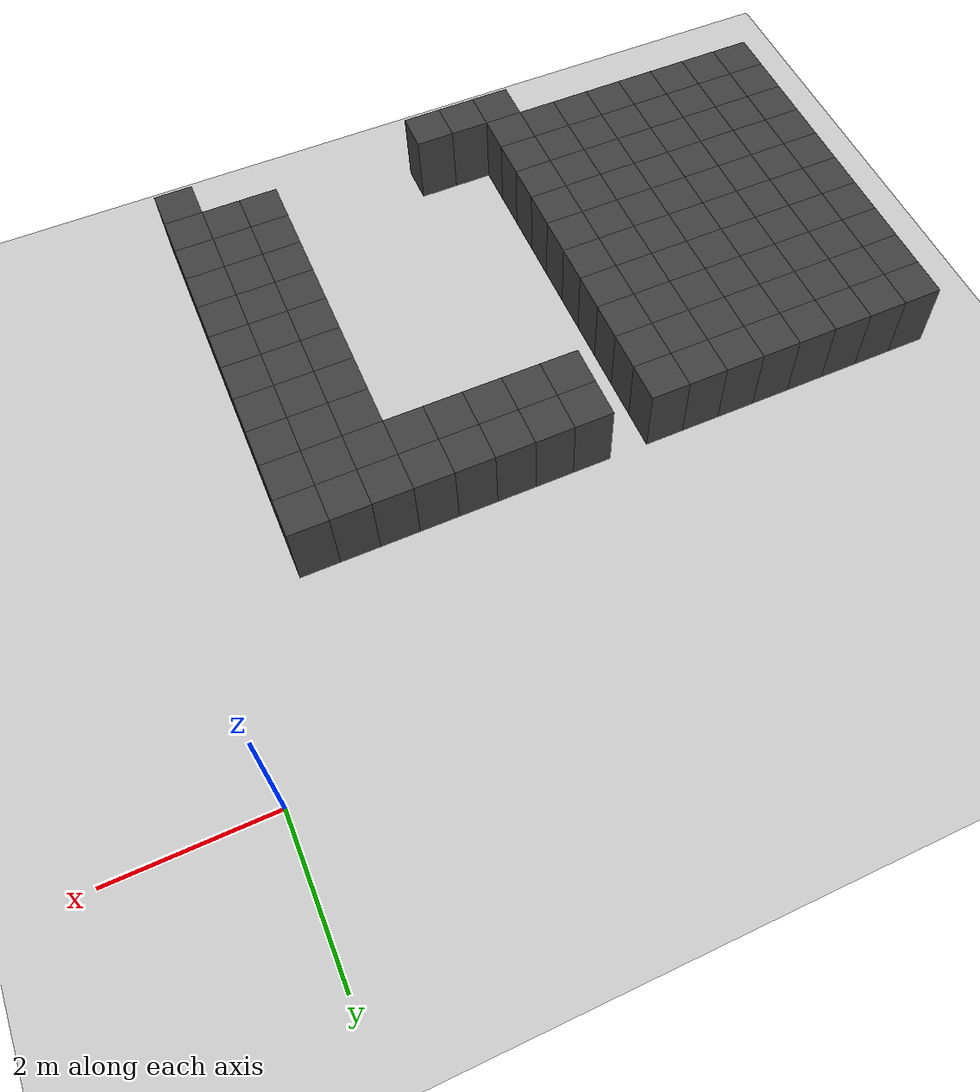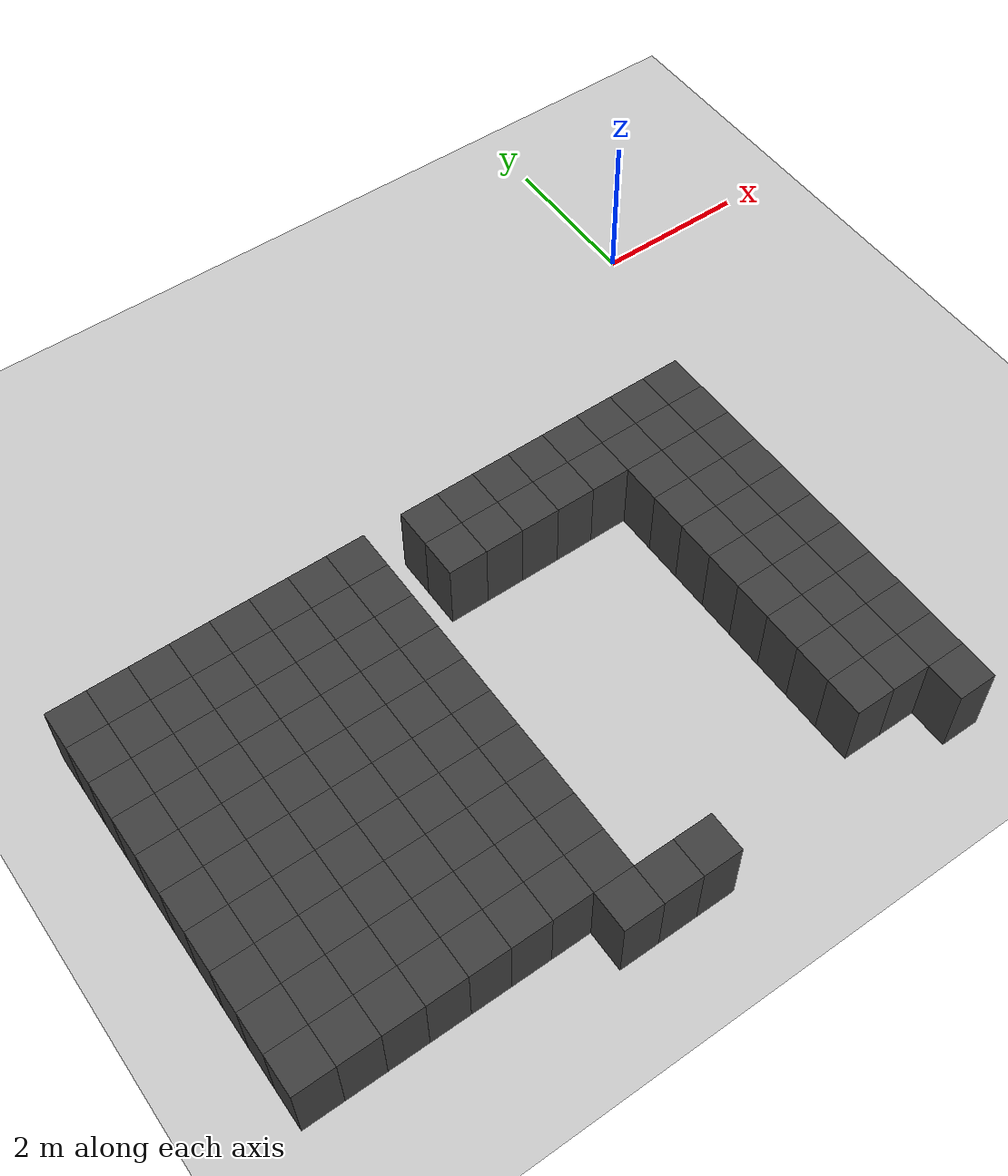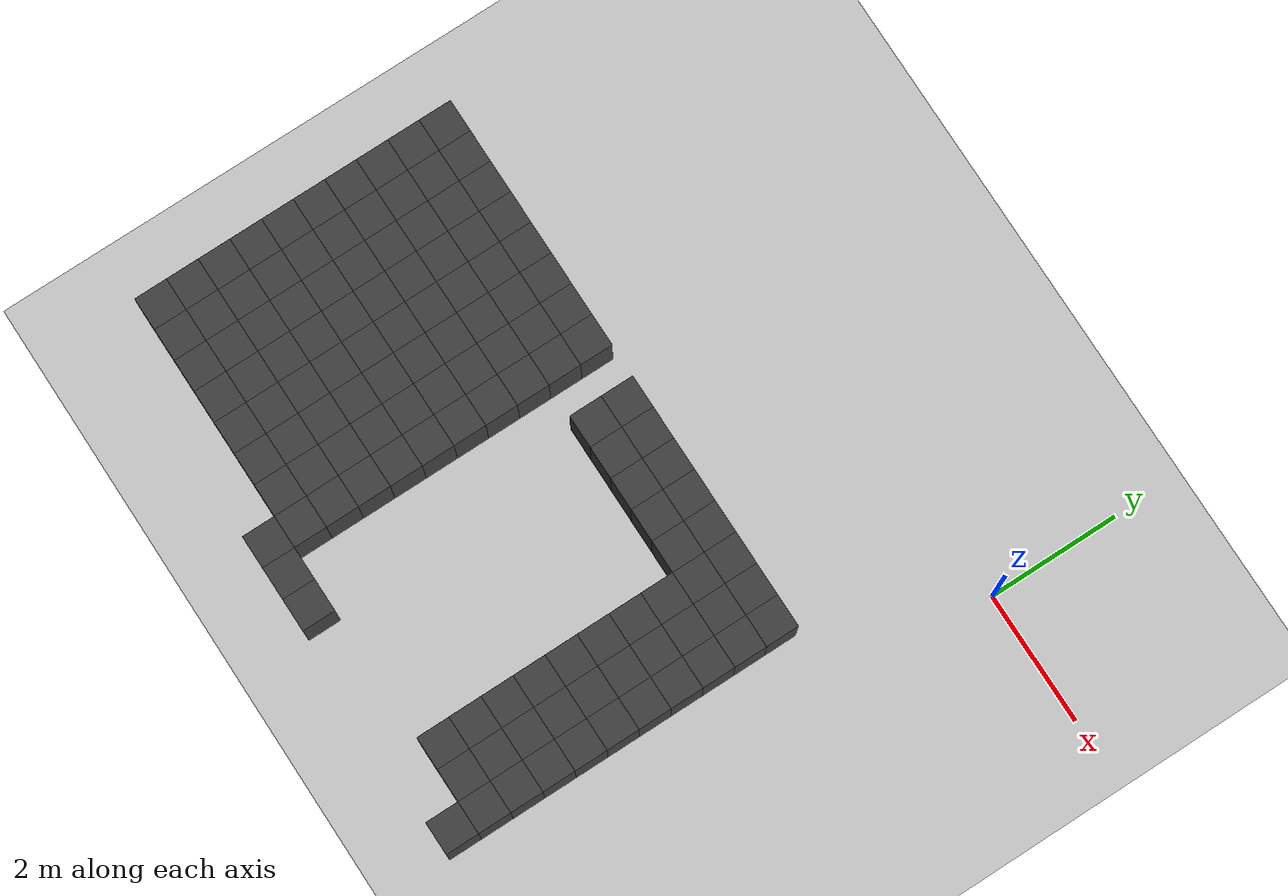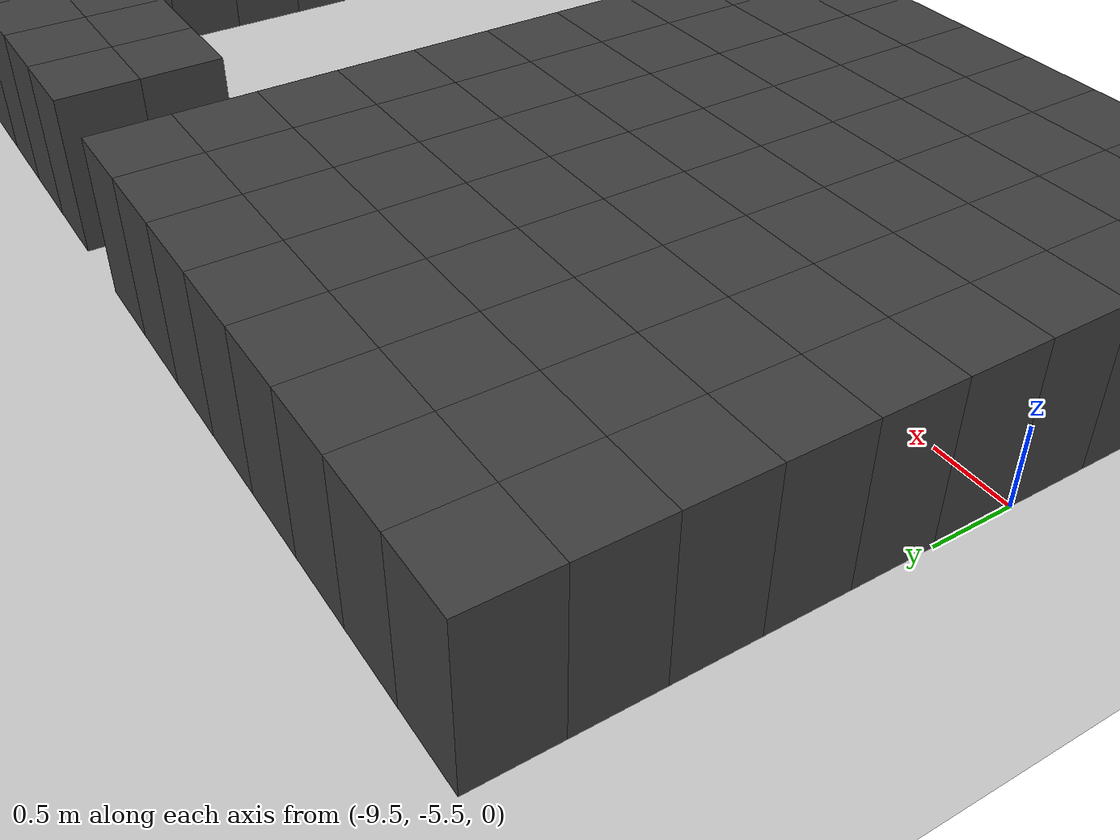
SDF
<sdf version="1.7">
 <world name="map_13364">
  <model name="ground_plane">
   <static>true</static>
   <link name="link">
    <collision name="collision">
     <geometry><plane><normal>0 0 1</normal><size>200 200</size></plane></geometry>
    </collision>
    <visual name="visual">
     <geometry><plane><normal>0 0 1</normal><size>200 200</size></plane></geometry>
     <material><ambient>0.8 0.8 0.8 1</ambient><diffuse>0.8 0.8 0.8 1</diffuse></material>
    </visual>
   </link>
  </model>
  <model name="maze_environment">
   <static>true</static>
   <link name="wall_1050">
    <pose>-9.250 -2.750 0.500 0 0 0</pose>
    <collision name="col"><geometry><box><size>0.5 0.5 1.0</size></box></geometry></collision>
    <visual name="vis">
     <geometry><box><size>0.5 0.5 1.0</size></box></geometry>
     <material><ambient>0.15 0.15 0.15 1</ambient><diffuse>0.25 0.25 0.25 1</diffuse></material>
    </visual>
   </link>
   <link name="wall_1051">
    <pose>-8.750 -2.750 0.500 0 0 0</pose>
    <collision name="col"><geometry><box><size>0.5 0.5 1.0</size></box></geometry></collision>
    <visual name="vis">
     <geometry><box><size>0.5 0.5 1.0</size></box></geometry>
     <material><ambient>0.15 0.15 0.15 1</ambient><diffuse>0.25 0.25 0.25 1</diffuse></material>
    </visual>
   </link>
   <link name="wall_1052">
    <pose>-8.250 -2.750 0.500 0 0 0</pose>
    <collision name="col"><geometry><box><size>0.5 0.5 1.0</size></box></geometry></collision>
    <visual name="vis">
     <geometry><box><size>0.5 0.5 1.0</size></box></geometry>
     <material><ambient>0.15 0.15 0.15 1</ambient><diffuse>0.25 0.25 0.25 1</diffuse></material>
    </visual>
   </link>
   <link name="wall_1053">
    <pose>-7.750 -2.750 0.500 0 0 0</pose>
    <collision name="col"><geometry><box><size>0.5 0.5 1.0</size></box></geometry></collision>
    <visual name="vis">
     <geometry><box><size>0.5 0.5 1.0</size></box></geometry>
     <material><ambient>0.15 0.15 0.15 1</ambient><diffuse>0.25 0.25 0.25 1</diffuse></material>
    </visual>
   </link>
   <link name="wall_1054">
    <pose>-7.250 -2.750 0.500 0 0 0</pose>
    <collision name="col"><geometry><box><size>0.5 0.5 1.0</size></box></geometry></collision>
    <visual name="vis">
     <geometry><box><size>0.5 0.5 1.0</size></box></geometry>
     <material><ambient>0.15 0.15 0.15 1</ambient><diffuse>0.25 0.25 0.25 1</diffuse></material>
    </visual>
   </link>
   <link name="wall_1055">
    <pose>-6.750 -2.750 0.500 0 0 0</pose>
    <collision name="col"><geometry><box><size>0.5 0.5 1.0</size></box></geometry></collision>
    <visual name="vis">
     <geometry><box><size>0.5 0.5 1.0</size></box></geometry>
     <material><ambient>0.15 0.15 0.15 1</ambient><diffuse>0.25 0.25 0.25 1</diffuse></material>
    </visual>
   </link>
   <link name="wall_1056">
    <pose>-6.250 -2.750 0.500 0 0 0</pose>
    <collision name="col"><geometry><box><size>0.5 0.5 1.0</size></box></geometry></collision>
    <visual name="vis">
     <geometry><box><size>0.5 0.5 1.0</size></box></geometry>
     <material><ambient>0.15 0.15 0.15 1</ambient><diffuse>0.25 0.25 0.25 1</diffuse></material>
    </visual>
   </link>
   <link name="wall_1057">
    <pose>-5.750 -2.750 0.500 0 0 0</pose>
    <collision name="col"><geometry><box><size>0.5 0.5 1.0</size></box></geometry></collision>
    <visual name="vis">
     <geometry><box><size>0.5 0.5 1.0</size></box></geometry>
     <material><ambient>0.15 0.15 0.15 1</ambient><diffuse>0.25 0.25 0.25 1</diffuse></material>
    </visual>
   </link>
   <link name="wall_1058">
    <pose>-4.750 -2.750 0.500 0 0 0</pose>
    <collision name="col"><geometry><box><size>0.5 0.5 1.0</size></box></geometry></collision>
    <visual name="vis">
     <geometry><box><size>0.5 0.5 1.0</size></box></geometry>
     <material><ambient>0.15 0.15 0.15 1</ambient><diffuse>0.25 0.25 0.25 1</diffuse></material>
    </visual>
   </link>
   <link name="wall_1059">
    <pose>-4.250 -2.750 0.500 0 0 0</pose>
    <collision name="col"><geometry><box><size>0.5 0.5 1.0</size></box></geometry></collision>
    <visual name="vis">
     <geometry><box><size>0.5 0.5 1.0</size></box></geometry>
     <material><ambient>0.15 0.15 0.15 1</ambient><diffuse>0.25 0.25 0.25 1</diffuse></material>
    </visual>
   </link>
   <link name="wall_1060">
    <pose>-3.750 -2.750 0.500 0 0 0</pose>
    <collision name="col"><geometry><box><size>0.5 0.5 1.0</size></box></geometry></collision>
    <visual name="vis">
     <geometry><box><size>0.5 0.5 1.0</size></box></geometry>
     <material><ambient>0.15 0.15 0.15 1</ambient><diffuse>0.25 0.25 0.25 1</diffuse></material>
    </visual>
   </link>
   <link name="wall_1061">
    <pose>-3.250 -2.750 0.500 0 0 0</pose>
    <collision name="col"><geometry><box><size>0.5 0.5 1.0</size></box></geometry></collision>
    <visual name="vis">
     <geometry><box><size>0.5 0.5 1.0</size></box></geometry>
     <material><ambient>0.15 0.15 0.15 1</ambient><diffuse>0.25 0.25 0.25 1</diffuse></material>
    </visual>
   </link>
   <link name="wall_1062">
    <pose>-2.750 -2.750 0.500 0 0 0</pose>
    <collision name="col"><geometry><box><size>0.5 0.5 1.0</size></box></geometry></collision>
    <visual name="vis">
     <geometry><box><size>0.5 0.5 1.0</size></box></geometry>
     <material><ambient>0.15 0.15 0.15 1</ambient><diffuse>0.25 0.25 0.25 1</diffuse></material>
    </visual>
   </link>
   <link name="wall_1063">
    <pose>-2.250 -2.750 0.500 0 0 0</pose>
    <collision name="col"><geometry><box><size>0.5 0.5 1.0</size></box></geometry></collision>
    <visual name="vis">
     <geometry><box><size>0.5 0.5 1.0</size></box></geometry>
     <material><ambient>0.15 0.15 0.15 1</ambient><diffuse>0.25 0.25 0.25 1</diffuse></material>
    </visual>
   </link>
   <link name="wall_1064">
    <pose>-1.750 -2.750 0.500 0 0 0</pose>
    <collision name="col"><geometry><box><size>0.5 0.5 1.0</size></box></geometry></collision>
    <visual name="vis">
     <geometry><box><size>0.5 0.5 1.0</size></box></geometry>
     <material><ambient>0.15 0.15 0.15 1</ambient><diffuse>0.25 0.25 0.25 1</diffuse></material>
    </visual>
   </link>
   <link name="wall_1065">
    <pose>-1.250 -2.750 0.500 0 0 0</pose>
    <collision name="col"><geometry><box><size>0.5 0.5 1.0</size></box></geometry></collision>
    <visual name="vis">
     <geometry><box><size>0.5 0.5 1.0</size></box></geometry>
     <material><ambient>0.15 0.15 0.15 1</ambient><diffuse>0.25 0.25 0.25 1</diffuse></material>
    </visual>
   </link>
   <link name="wall_1090">
    <pose>-9.250 -3.250 0.500 0 0 0</pose>
    <collision name="col"><geometry><box><size>0.5 0.5 1.0</size></box></geometry></collision>
    <visual name="vis">
     <geometry><box><size>0.5 0.5 1.0</size></box></geometry>
     <material><ambient>0.15 0.15 0.15 1</ambient><diffuse>0.25 0.25 0.25 1</diffuse></material>
    </visual>
   </link>
   <link name="wall_1091">
    <pose>-8.750 -3.250 0.500 0 0 0</pose>
    <collision name="col"><geometry><box><size>0.5 0.5 1.0</size></box></geometry></collision>
    <visual name="vis">
     <geometry><box><size>0.5 0.5 1.0</size></box></geometry>
     <material><ambient>0.15 0.15 0.15 1</ambient><diffuse>0.25 0.25 0.25 1</diffuse></material>
    </visual>
   </link>
   <link name="wall_1092">
    <pose>-8.250 -3.250 0.500 0 0 0</pose>
    <collision name="col"><geometry><box><size>0.5 0.5 1.0</size></box></geometry></collision>
    <visual name="vis">
     <geometry><box><size>0.5 0.5 1.0</size></box></geometry>
     <material><ambient>0.15 0.15 0.15 1</ambient><diffuse>0.25 0.25 0.25 1</diffuse></material>
    </visual>
   </link>
   <link name="wall_1093">
    <pose>-7.750 -3.250 0.500 0 0 0</pose>
    <collision name="col"><geometry><box><size>0.5 0.5 1.0</size></box></geometry></collision>
    <visual name="vis">
     <geometry><box><size>0.5 0.5 1.0</size></box></geometry>
     <material><ambient>0.15 0.15 0.15 1</ambient><diffuse>0.25 0.25 0.25 1</diffuse></material>
    </visual>
   </link>
   <link name="wall_1094">
    <pose>-7.250 -3.250 0.500 0 0 0</pose>
    <collision name="col"><geometry><box><size>0.5 0.5 1.0</size></box></geometry></collision>
    <visual name="vis">
     <geometry><box><size>0.5 0.5 1.0</size></box></geometry>
     <material><ambient>0.15 0.15 0.15 1</ambient><diffuse>0.25 0.25 0.25 1</diffuse></material>
    </visual>
   </link>
   <link name="wall_1095">
    <pose>-6.750 -3.250 0.500 0 0 0</pose>
    <collision name="col"><geometry><box><size>0.5 0.5 1.0</size></box></geometry></collision>
    <visual name="vis">
     <geometry><box><size>0.5 0.5 1.0</size></box></geometry>
     <material><ambient>0.15 0.15 0.15 1</ambient><diffuse>0.25 0.25 0.25 1</diffuse></material>
    </visual>
   </link>
   <link name="wall_1096">
    <pose>-6.250 -3.250 0.500 0 0 0</pose>
    <collision name="col"><geometry><box><size>0.5 0.5 1.0</size></box></geometry></collision>
    <visual name="vis">
     <geometry><box><size>0.5 0.5 1.0</size></box></geometry>
     <material><ambient>0.15 0.15 0.15 1</ambient><diffuse>0.25 0.25 0.25 1</diffuse></material>
    </visual>
   </link>
   <link name="wall_1097">
    <pose>-5.750 -3.250 0.500 0 0 0</pose>
    <collision name="col"><geometry><box><size>0.5 0.5 1.0</size></box></geometry></collision>
    <visual name="vis">
     <geometry><box><size>0.5 0.5 1.0</size></box></geometry>
     <material><ambient>0.15 0.15 0.15 1</ambient><diffuse>0.25 0.25 0.25 1</diffuse></material>
    </visual>
   </link>
   <link name="wall_1098">
    <pose>-4.750 -3.250 0.500 0 0 0</pose>
    <collision name="col"><geometry><box><size>0.5 0.5 1.0</size></box></geometry></collision>
    <visual name="vis">
     <geometry><box><size>0.5 0.5 1.0</size></box></geometry>
     <material><ambient>0.15 0.15 0.15 1</ambient><diffuse>0.25 0.25 0.25 1</diffuse></material>
    </visual>
   </link>
   <link name="wall_1099">
    <pose>-4.250 -3.250 0.500 0 0 0</pose>
    <collision name="col"><geometry><box><size>0.5 0.5 1.0</size></box></geometry></collision>
    <visual name="vis">
     <geometry><box><size>0.5 0.5 1.0</size></box></geometry>
     <material><ambient>0.15 0.15 0.15 1</ambient><diffuse>0.25 0.25 0.25 1</diffuse></material>
    </visual>
   </link>
   <link name="wall_1100">
    <pose>-3.750 -3.250 0.500 0 0 0</pose>
    <collision name="col"><geometry><box><size>0.5 0.5 1.0</size></box></geometry></collision>
    <visual name="vis">
     <geometry><box><size>0.5 0.5 1.0</size></box></geometry>
     <material><ambient>0.15 0.15 0.15 1</ambient><diffuse>0.25 0.25 0.25 1</diffuse></material>
    </visual>
   </link>
   <link name="wall_1101">
    <pose>-3.250 -3.250 0.500 0 0 0</pose>
    <collision name="col"><geometry><box><size>0.5 0.5 1.0</size></box></geometry></collision>
    <visual name="vis">
     <geometry><box><size>0.5 0.5 1.0</size></box></geometry>
     <material><ambient>0.15 0.15 0.15 1</ambient><diffuse>0.25 0.25 0.25 1</diffuse></material>
    </visual>
   </link>
   <link name="wall_1102">
    <pose>-2.750 -3.250 0.500 0 0 0</pose>
    <collision name="col"><geometry><box><size>0.5 0.5 1.0</size></box></geometry></collision>
    <visual name="vis">
     <geometry><box><size>0.5 0.5 1.0</size></box></geometry>
     <material><ambient>0.15 0.15 0.15 1</ambient><diffuse>0.25 0.25 0.25 1</diffuse></material>
    </visual>
   </link>
   <link name="wall_1103">
    <pose>-2.250 -3.250 0.500 0 0 0</pose>
    <collision name="col"><geometry><box><size>0.5 0.5 1.0</size></box></geometry></collision>
    <visual name="vis">
     <geometry><box><size>0.5 0.5 1.0</size></box></geometry>
     <material><ambient>0.15 0.15 0.15 1</ambient><diffuse>0.25 0.25 0.25 1</diffuse></material>
    </visual>
   </link>
   <link name="wall_1104">
    <pose>-1.750 -3.250 0.500 0 0 0</pose>
    <collision name="col"><geometry><box><size>0.5 0.5 1.0</size></box></geometry></collision>
    <visual name="vis">
     <geometry><box><size>0.5 0.5 1.0</size></box></geometry>
     <material><ambient>0.15 0.15 0.15 1</ambient><diffuse>0.25 0.25 0.25 1</diffuse></material>
    </visual>
   </link>
   <link name="wall_1105">
    <pose>-1.250 -3.250 0.500 0 0 0</pose>
    <collision name="col"><geometry><box><size>0.5 0.5 1.0</size></box></geometry></collision>
    <visual name="vis">
     <geometry><box><size>0.5 0.5 1.0</size></box></geometry>
     <material><ambient>0.15 0.15 0.15 1</ambient><diffuse>0.25 0.25 0.25 1</diffuse></material>
    </visual>
   </link>
   <link name="wall_1130">
    <pose>-9.250 -3.750 0.500 0 0 0</pose>
    <collision name="col"><geometry><box><size>0.5 0.5 1.0</size></box></geometry></collision>
    <visual name="vis">
     <geometry><box><size>0.5 0.5 1.0</size></box></geometry>
     <material><ambient>0.15 0.15 0.15 1</ambient><diffuse>0.25 0.25 0.25 1</diffuse></material>
    </visual>
   </link>
   <link name="wall_1131">
    <pose>-8.750 -3.750 0.500 0 0 0</pose>
    <collision name="col"><geometry><box><size>0.5 0.5 1.0</size></box></geometry></collision>
    <visual name="vis">
     <geometry><box><size>0.5 0.5 1.0</size></box></geometry>
     <material><ambient>0.15 0.15 0.15 1</ambient><diffuse>0.25 0.25 0.25 1</diffuse></material>
    </visual>
   </link>
   <link name="wall_1132">
    <pose>-8.250 -3.750 0.500 0 0 0</pose>
    <collision name="col"><geometry><box><size>0.5 0.5 1.0</size></box></geometry></collision>
    <visual name="vis">
     <geometry><box><size>0.5 0.5 1.0</size></box></geometry>
     <material><ambient>0.15 0.15 0.15 1</ambient><diffuse>0.25 0.25 0.25 1</diffuse></material>
    </visual>
   </link>
   <link name="wall_1133">
    <pose>-7.750 -3.750 0.500 0 0 0</pose>
    <collision name="col"><geometry><box><size>0.5 0.5 1.0</size></box></geometry></collision>
    <visual name="vis">
     <geometry><box><size>0.5 0.5 1.0</size></box></geometry>
     <material><ambient>0.15 0.15 0.15 1</ambient><diffuse>0.25 0.25 0.25 1</diffuse></material>
    </visual>
   </link>
   <link name="wall_1134">
    <pose>-7.250 -3.750 0.500 0 0 0</pose>
    <collision name="col"><geometry><box><size>0.5 0.5 1.0</size></box></geometry></collision>
    <visual name="vis">
     <geometry><box><size>0.5 0.5 1.0</size></box></geometry>
     <material><ambient>0.15 0.15 0.15 1</ambient><diffuse>0.25 0.25 0.25 1</diffuse></material>
    </visual>
   </link>
   <link name="wall_1135">
    <pose>-6.750 -3.750 0.500 0 0 0</pose>
    <collision name="col"><geometry><box><size>0.5 0.5 1.0</size></box></geometry></collision>
    <visual name="vis">
     <geometry><box><size>0.5 0.5 1.0</size></box></geometry>
     <material><ambient>0.15 0.15 0.15 1</ambient><diffuse>0.25 0.25 0.25 1</diffuse></material>
    </visual>
   </link>
   <link name="wall_1136">
    <pose>-6.250 -3.750 0.500 0 0 0</pose>
    <collision name="col"><geometry><box><size>0.5 0.5 1.0</size></box></geometry></collision>
    <visual name="vis">
     <geometry><box><size>0.5 0.5 1.0</size></box></geometry>
     <material><ambient>0.15 0.15 0.15 1</ambient><diffuse>0.25 0.25 0.25 1</diffuse></material>
    </visual>
   </link>
   <link name="wall_1137">
    <pose>-5.750 -3.750 0.500 0 0 0</pose>
    <collision name="col"><geometry><box><size>0.5 0.5 1.0</size></box></geometry></collision>
    <visual name="vis">
     <geometry><box><size>0.5 0.5 1.0</size></box></geometry>
     <material><ambient>0.15 0.15 0.15 1</ambient><diffuse>0.25 0.25 0.25 1</diffuse></material>
    </visual>
   </link>
   <link name="wall_1138">
    <pose>-2.250 -3.750 0.500 0 0 0</pose>
    <collision name="col"><geometry><box><size>0.5 0.5 1.0</size></box></geometry></collision>
    <visual name="vis">
     <geometry><box><size>0.5 0.5 1.0</size></box></geometry>
     <material><ambient>0.15 0.15 0.15 1</ambient><diffuse>0.25 0.25 0.25 1</diffuse></material>
    </visual>
   </link>
   <link name="wall_1139">
    <pose>-1.750 -3.750 0.500 0 0 0</pose>
    <collision name="col"><geometry><box><size>0.5 0.5 1.0</size></box></geometry></collision>
    <visual name="vis">
     <geometry><box><size>0.5 0.5 1.0</size></box></geometry>
     <material><ambient>0.15 0.15 0.15 1</ambient><diffuse>0.25 0.25 0.25 1</diffuse></material>
    </visual>
   </link>
   <link name="wall_1140">
    <pose>-1.250 -3.750 0.500 0 0 0</pose>
    <collision name="col"><geometry><box><size>0.5 0.5 1.0</size></box></geometry></collision>
    <visual name="vis">
     <geometry><box><size>0.5 0.5 1.0</size></box></geometry>
     <material><ambient>0.15 0.15 0.15 1</ambient><diffuse>0.25 0.25 0.25 1</diffuse></material>
    </visual>
   </link>
   <link name="wall_1165">
    <pose>-9.250 -4.250 0.500 0 0 0</pose>
    <collision name="col"><geometry><box><size>0.5 0.5 1.0</size></box></geometry></collision>
    <visual name="vis">
     <geometry><box><size>0.5 0.5 1.0</size></box></geometry>
     <material><ambient>0.15 0.15 0.15 1</ambient><diffuse>0.25 0.25 0.25 1</diffuse></material>
    </visual>
   </link>
   <link name="wall_1166">
    <pose>-8.750 -4.250 0.500 0 0 0</pose>
    <collision name="col"><geometry><box><size>0.5 0.5 1.0</size></box></geometry></collision>
    <visual name="vis">
     <geometry><box><size>0.5 0.5 1.0</size></box></geometry>
     <material><ambient>0.15 0.15 0.15 1</ambient><diffuse>0.25 0.25 0.25 1</diffuse></material>
    </visual>
   </link>
   <link name="wall_1167">
    <pose>-8.250 -4.250 0.500 0 0 0</pose>
    <collision name="col"><geometry><box><size>0.5 0.5 1.0</size></box></geometry></collision>
    <visual name="vis">
     <geometry><box><size>0.5 0.5 1.0</size></box></geometry>
     <material><ambient>0.15 0.15 0.15 1</ambient><diffuse>0.25 0.25 0.25 1</diffuse></material>
    </visual>
   </link>
   <link name="wall_1168">
    <pose>-7.750 -4.250 0.500 0 0 0</pose>
    <collision name="col"><geometry><box><size>0.5 0.5 1.0</size></box></geometry></collision>
    <visual name="vis">
     <geometry><box><size>0.5 0.5 1.0</size></box></geometry>
     <material><ambient>0.15 0.15 0.15 1</ambient><diffuse>0.25 0.25 0.25 1</diffuse></material>
    </visual>
   </link>
   <link name="wall_1169">
    <pose>-7.250 -4.250 0.500 0 0 0</pose>
    <collision name="col"><geometry><box><size>0.5 0.5 1.0</size></box></geometry></collision>
    <visual name="vis">
     <geometry><box><size>0.5 0.5 1.0</size></box></geometry>
     <material><ambient>0.15 0.15 0.15 1</ambient><diffuse>0.25 0.25 0.25 1</diffuse></material>
    </visual>
   </link>
   <link name="wall_1170">
    <pose>-6.750 -4.250 0.500 0 0 0</pose>
    <collision name="col"><geometry><box><size>0.5 0.5 1.0</size></box></geometry></collision>
    <visual name="vis">
     <geometry><box><size>0.5 0.5 1.0</size></box></geometry>
     <material><ambient>0.15 0.15 0.15 1</ambient><diffuse>0.25 0.25 0.25 1</diffuse></material>
    </visual>
   </link>
   <link name="wall_1171">
    <pose>-6.250 -4.250 0.500 0 0 0</pose>
    <collision name="col"><geometry><box><size>0.5 0.5 1.0</size></box></geometry></collision>
    <visual name="vis">
     <geometry><box><size>0.5 0.5 1.0</size></box></geometry>
     <material><ambient>0.15 0.15 0.15 1</ambient><diffuse>0.25 0.25 0.25 1</diffuse></material>
    </visual>
   </link>
   <link name="wall_1172">
    <pose>-5.750 -4.250 0.500 0 0 0</pose>
    <collision name="col"><geometry><box><size>0.5 0.5 1.0</size></box></geometry></collision>
    <visual name="vis">
     <geometry><box><size>0.5 0.5 1.0</size></box></geometry>
     <material><ambient>0.15 0.15 0.15 1</ambient><diffuse>0.25 0.25 0.25 1</diffuse></material>
    </visual>
   </link>
   <link name="wall_1173">
    <pose>-2.250 -4.250 0.500 0 0 0</pose>
    <collision name="col"><geometry><box><size>0.5 0.5 1.0</size></box></geometry></collision>
    <visual name="vis">
     <geometry><box><size>0.5 0.5 1.0</size></box></geometry>
     <material><ambient>0.15 0.15 0.15 1</ambient><diffuse>0.25 0.25 0.25 1</diffuse></material>
    </visual>
   </link>
   <link name="wall_1174">
    <pose>-1.750 -4.250 0.500 0 0 0</pose>
    <collision name="col"><geometry><box><size>0.5 0.5 1.0</size></box></geometry></collision>
    <visual name="vis">
     <geometry><box><size>0.5 0.5 1.0</size></box></geometry>
     <material><ambient>0.15 0.15 0.15 1</ambient><diffuse>0.25 0.25 0.25 1</diffuse></material>
    </visual>
   </link>
   <link name="wall_1175">
    <pose>-1.250 -4.250 0.500 0 0 0</pose>
    <collision name="col"><geometry><box><size>0.5 0.5 1.0</size></box></geometry></collision>
    <visual name="vis">
     <geometry><box><size>0.5 0.5 1.0</size></box></geometry>
     <material><ambient>0.15 0.15 0.15 1</ambient><diffuse>0.25 0.25 0.25 1</diffuse></material>
    </visual>
   </link>
   <link name="wall_1208">
    <pose>-9.250 -4.750 0.500 0 0 0</pose>
    <collision name="col"><geometry><box><size>0.5 0.5 1.0</size></box></geometry></collision>
    <visual name="vis">
     <geometry><box><size>0.5 0.5 1.0</size></box></geometry>
     <material><ambient>0.15 0.15 0.15 1</ambient><diffuse>0.25 0.25 0.25 1</diffuse></material>
    </visual>
   </link>
   <link name="wall_1209">
    <pose>-8.750 -4.750 0.500 0 0 0</pose>
    <collision name="col"><geometry><box><size>0.5 0.5 1.0</size></box></geometry></collision>
    <visual name="vis">
     <geometry><box><size>0.5 0.5 1.0</size></box></geometry>
     <material><ambient>0.15 0.15 0.15 1</ambient><diffuse>0.25 0.25 0.25 1</diffuse></material>
    </visual>
   </link>
   <link name="wall_1210">
    <pose>-8.250 -4.750 0.500 0 0 0</pose>
    <collision name="col"><geometry><box><size>0.5 0.5 1.0</size></box></geometry></collision>
    <visual name="vis">
     <geometry><box><size>0.5 0.5 1.0</size></box></geometry>
     <material><ambient>0.15 0.15 0.15 1</ambient><diffuse>0.25 0.25 0.25 1</diffuse></material>
    </visual>
   </link>
   <link name="wall_1211">
    <pose>-7.750 -4.750 0.500 0 0 0</pose>
    <collision name="col"><geometry><box><size>0.5 0.5 1.0</size></box></geometry></collision>
    <visual name="vis">
     <geometry><box><size>0.5 0.5 1.0</size></box></geometry>
     <material><ambient>0.15 0.15 0.15 1</ambient><diffuse>0.25 0.25 0.25 1</diffuse></material>
    </visual>
   </link>
   <link name="wall_1212">
    <pose>-7.250 -4.750 0.500 0 0 0</pose>
    <collision name="col"><geometry><box><size>0.5 0.5 1.0</size></box></geometry></collision>
    <visual name="vis">
     <geometry><box><size>0.5 0.5 1.0</size></box></geometry>
     <material><ambient>0.15 0.15 0.15 1</ambient><diffuse>0.25 0.25 0.25 1</diffuse></material>
    </visual>
   </link>
   <link name="wall_1213">
    <pose>-6.750 -4.750 0.500 0 0 0</pose>
    <collision name="col"><geometry><box><size>0.5 0.5 1.0</size></box></geometry></collision>
    <visual name="vis">
     <geometry><box><size>0.5 0.5 1.0</size></box></geometry>
     <material><ambient>0.15 0.15 0.15 1</ambient><diffuse>0.25 0.25 0.25 1</diffuse></material>
    </visual>
   </link>
   <link name="wall_1214">
    <pose>-6.250 -4.750 0.500 0 0 0</pose>
    <collision name="col"><geometry><box><size>0.5 0.5 1.0</size></box></geometry></collision>
    <visual name="vis">
     <geometry><box><size>0.5 0.5 1.0</size></box></geometry>
     <material><ambient>0.15 0.15 0.15 1</ambient><diffuse>0.25 0.25 0.25 1</diffuse></material>
    </visual>
   </link>
   <link name="wall_1215">
    <pose>-5.750 -4.750 0.500 0 0 0</pose>
    <collision name="col"><geometry><box><size>0.5 0.5 1.0</size></box></geometry></collision>
    <visual name="vis">
     <geometry><box><size>0.5 0.5 1.0</size></box></geometry>
     <material><ambient>0.15 0.15 0.15 1</ambient><diffuse>0.25 0.25 0.25 1</diffuse></material>
    </visual>
   </link>
   <link name="wall_1216">
    <pose>-2.250 -4.750 0.500 0 0 0</pose>
    <collision name="col"><geometry><box><size>0.5 0.5 1.0</size></box></geometry></collision>
    <visual name="vis">
     <geometry><box><size>0.5 0.5 1.0</size></box></geometry>
     <material><ambient>0.15 0.15 0.15 1</ambient><diffuse>0.25 0.25 0.25 1</diffuse></material>
    </visual>
   </link>
   <link name="wall_1217">
    <pose>-1.750 -4.750 0.500 0 0 0</pose>
    <collision name="col"><geometry><box><size>0.5 0.5 1.0</size></box></geometry></collision>
    <visual name="vis">
     <geometry><box><size>0.5 0.5 1.0</size></box></geometry>
     <material><ambient>0.15 0.15 0.15 1</ambient><diffuse>0.25 0.25 0.25 1</diffuse></material>
    </visual>
   </link>
   <link name="wall_1218">
    <pose>-1.250 -4.750 0.500 0 0 0</pose>
    <collision name="col"><geometry><box><size>0.5 0.5 1.0</size></box></geometry></collision>
    <visual name="vis">
     <geometry><box><size>0.5 0.5 1.0</size></box></geometry>
     <material><ambient>0.15 0.15 0.15 1</ambient><diffuse>0.25 0.25 0.25 1</diffuse></material>
    </visual>
   </link>
   <link name="wall_1251">
    <pose>-9.250 -5.250 0.500 0 0 0</pose>
    <collision name="col"><geometry><box><size>0.5 0.5 1.0</size></box></geometry></collision>
    <visual name="vis">
     <geometry><box><size>0.5 0.5 1.0</size></box></geometry>
     <material><ambient>0.15 0.15 0.15 1</ambient><diffuse>0.25 0.25 0.25 1</diffuse></material>
    </visual>
   </link>
   <link name="wall_1252">
    <pose>-8.750 -5.250 0.500 0 0 0</pose>
    <collision name="col"><geometry><box><size>0.5 0.5 1.0</size></box></geometry></collision>
    <visual name="vis">
     <geometry><box><size>0.5 0.5 1.0</size></box></geometry>
     <material><ambient>0.15 0.15 0.15 1</ambient><diffuse>0.25 0.25 0.25 1</diffuse></material>
    </visual>
   </link>
   <link name="wall_1253">
    <pose>-8.250 -5.250 0.500 0 0 0</pose>
    <collision name="col"><geometry><box><size>0.5 0.5 1.0</size></box></geometry></collision>
    <visual name="vis">
     <geometry><box><size>0.5 0.5 1.0</size></box></geometry>
     <material><ambient>0.15 0.15 0.15 1</ambient><diffuse>0.25 0.25 0.25 1</diffuse></material>
    </visual>
   </link>
   <link name="wall_1254">
    <pose>-7.750 -5.250 0.500 0 0 0</pose>
    <collision name="col"><geometry><box><size>0.5 0.5 1.0</size></box></geometry></collision>
    <visual name="vis">
     <geometry><box><size>0.5 0.5 1.0</size></box></geometry>
     <material><ambient>0.15 0.15 0.15 1</ambient><diffuse>0.25 0.25 0.25 1</diffuse></material>
    </visual>
   </link>
   <link name="wall_1255">
    <pose>-7.250 -5.250 0.500 0 0 0</pose>
    <collision name="col"><geometry><box><size>0.5 0.5 1.0</size></box></geometry></collision>
    <visual name="vis">
     <geometry><box><size>0.5 0.5 1.0</size></box></geometry>
     <material><ambient>0.15 0.15 0.15 1</ambient><diffuse>0.25 0.25 0.25 1</diffuse></material>
    </visual>
   </link>
   <link name="wall_1256">
    <pose>-6.750 -5.250 0.500 0 0 0</pose>
    <collision name="col"><geometry><box><size>0.5 0.5 1.0</size></box></geometry></collision>
    <visual name="vis">
     <geometry><box><size>0.5 0.5 1.0</size></box></geometry>
     <material><ambient>0.15 0.15 0.15 1</ambient><diffuse>0.25 0.25 0.25 1</diffuse></material>
    </visual>
   </link>
   <link name="wall_1257">
    <pose>-6.250 -5.250 0.500 0 0 0</pose>
    <collision name="col"><geometry><box><size>0.5 0.5 1.0</size></box></geometry></collision>
    <visual name="vis">
     <geometry><box><size>0.5 0.5 1.0</size></box></geometry>
     <material><ambient>0.15 0.15 0.15 1</ambient><diffuse>0.25 0.25 0.25 1</diffuse></material>
    </visual>
   </link>
   <link name="wall_1258">
    <pose>-5.750 -5.250 0.500 0 0 0</pose>
    <collision name="col"><geometry><box><size>0.5 0.5 1.0</size></box></geometry></collision>
    <visual name="vis">
     <geometry><box><size>0.5 0.5 1.0</size></box></geometry>
     <material><ambient>0.15 0.15 0.15 1</ambient><diffuse>0.25 0.25 0.25 1</diffuse></material>
    </visual>
   </link>
   <link name="wall_1259">
    <pose>-2.250 -5.250 0.500 0 0 0</pose>
    <collision name="col"><geometry><box><size>0.5 0.5 1.0</size></box></geometry></collision>
    <visual name="vis">
     <geometry><box><size>0.5 0.5 1.0</size></box></geometry>
     <material><ambient>0.15 0.15 0.15 1</ambient><diffuse>0.25 0.25 0.25 1</diffuse></material>
    </visual>
   </link>
   <link name="wall_1260">
    <pose>-1.750 -5.250 0.500 0 0 0</pose>
    <collision name="col"><geometry><box><size>0.5 0.5 1.0</size></box></geometry></collision>
    <visual name="vis">
     <geometry><box><size>0.5 0.5 1.0</size></box></geometry>
     <material><ambient>0.15 0.15 0.15 1</ambient><diffuse>0.25 0.25 0.25 1</diffuse></material>
    </visual>
   </link>
   <link name="wall_1261">
    <pose>-1.250 -5.250 0.500 0 0 0</pose>
    <collision name="col"><geometry><box><size>0.5 0.5 1.0</size></box></geometry></collision>
    <visual name="vis">
     <geometry><box><size>0.5 0.5 1.0</size></box></geometry>
     <material><ambient>0.15 0.15 0.15 1</ambient><diffuse>0.25 0.25 0.25 1</diffuse></material>
    </visual>
   </link>
   <link name="wall_1294">
    <pose>-9.250 -5.750 0.500 0 0 0</pose>
    <collision name="col"><geometry><box><size>0.5 0.5 1.0</size></box></geometry></collision>
    <visual name="vis">
     <geometry><box><size>0.5 0.5 1.0</size></box></geometry>
     <material><ambient>0.15 0.15 0.15 1</ambient><diffuse>0.25 0.25 0.25 1</diffuse></material>
    </visual>
   </link>
   <link name="wall_1295">
    <pose>-8.750 -5.750 0.500 0 0 0</pose>
    <collision name="col"><geometry><box><size>0.5 0.5 1.0</size></box></geometry></collision>
    <visual name="vis">
     <geometry><box><size>0.5 0.5 1.0</size></box></geometry>
     <material><ambient>0.15 0.15 0.15 1</ambient><diffuse>0.25 0.25 0.25 1</diffuse></material>
    </visual>
   </link>
   <link name="wall_1296">
    <pose>-8.250 -5.750 0.500 0 0 0</pose>
    <collision name="col"><geometry><box><size>0.5 0.5 1.0</size></box></geometry></collision>
    <visual name="vis">
     <geometry><box><size>0.5 0.5 1.0</size></box></geometry>
     <material><ambient>0.15 0.15 0.15 1</ambient><diffuse>0.25 0.25 0.25 1</diffuse></material>
    </visual>
   </link>
   <link name="wall_1297">
    <pose>-7.750 -5.750 0.500 0 0 0</pose>
    <collision name="col"><geometry><box><size>0.5 0.5 1.0</size></box></geometry></collision>
    <visual name="vis">
     <geometry><box><size>0.5 0.5 1.0</size></box></geometry>
     <material><ambient>0.15 0.15 0.15 1</ambient><diffuse>0.25 0.25 0.25 1</diffuse></material>
    </visual>
   </link>
   <link name="wall_1298">
    <pose>-7.250 -5.750 0.500 0 0 0</pose>
    <collision name="col"><geometry><box><size>0.5 0.5 1.0</size></box></geometry></collision>
    <visual name="vis">
     <geometry><box><size>0.5 0.5 1.0</size></box></geometry>
     <material><ambient>0.15 0.15 0.15 1</ambient><diffuse>0.25 0.25 0.25 1</diffuse></material>
    </visual>
   </link>
   <link name="wall_1299">
    <pose>-6.750 -5.750 0.500 0 0 0</pose>
    <collision name="col"><geometry><box><size>0.5 0.5 1.0</size></box></geometry></collision>
    <visual name="vis">
     <geometry><box><size>0.5 0.5 1.0</size></box></geometry>
     <material><ambient>0.15 0.15 0.15 1</ambient><diffuse>0.25 0.25 0.25 1</diffuse></material>
    </visual>
   </link>
   <link name="wall_1300">
    <pose>-6.250 -5.750 0.500 0 0 0</pose>
    <collision name="col"><geometry><box><size>0.5 0.5 1.0</size></box></geometry></collision>
    <visual name="vis">
     <geometry><box><size>0.5 0.5 1.0</size></box></geometry>
     <material><ambient>0.15 0.15 0.15 1</ambient><diffuse>0.25 0.25 0.25 1</diffuse></material>
    </visual>
   </link>
   <link name="wall_1301">
    <pose>-5.750 -5.750 0.500 0 0 0</pose>
    <collision name="col"><geometry><box><size>0.5 0.5 1.0</size></box></geometry></collision>
    <visual name="vis">
     <geometry><box><size>0.5 0.5 1.0</size></box></geometry>
     <material><ambient>0.15 0.15 0.15 1</ambient><diffuse>0.25 0.25 0.25 1</diffuse></material>
    </visual>
   </link>
   <link name="wall_1302">
    <pose>-2.250 -5.750 0.500 0 0 0</pose>
    <collision name="col"><geometry><box><size>0.5 0.5 1.0</size></box></geometry></collision>
    <visual name="vis">
     <geometry><box><size>0.5 0.5 1.0</size></box></geometry>
     <material><ambient>0.15 0.15 0.15 1</ambient><diffuse>0.25 0.25 0.25 1</diffuse></material>
    </visual>
   </link>
   <link name="wall_1303">
    <pose>-1.750 -5.750 0.500 0 0 0</pose>
    <collision name="col"><geometry><box><size>0.5 0.5 1.0</size></box></geometry></collision>
    <visual name="vis">
     <geometry><box><size>0.5 0.5 1.0</size></box></geometry>
     <material><ambient>0.15 0.15 0.15 1</ambient><diffuse>0.25 0.25 0.25 1</diffuse></material>
    </visual>
   </link>
   <link name="wall_1304">
    <pose>-1.250 -5.750 0.500 0 0 0</pose>
    <collision name="col"><geometry><box><size>0.5 0.5 1.0</size></box></geometry></collision>
    <visual name="vis">
     <geometry><box><size>0.5 0.5 1.0</size></box></geometry>
     <material><ambient>0.15 0.15 0.15 1</ambient><diffuse>0.25 0.25 0.25 1</diffuse></material>
    </visual>
   </link>
   <link name="wall_1337">
    <pose>-9.250 -6.250 0.500 0 0 0</pose>
    <collision name="col"><geometry><box><size>0.5 0.5 1.0</size></box></geometry></collision>
    <visual name="vis">
     <geometry><box><size>0.5 0.5 1.0</size></box></geometry>
     <material><ambient>0.15 0.15 0.15 1</ambient><diffuse>0.25 0.25 0.25 1</diffuse></material>
    </visual>
   </link>
   <link name="wall_1338">
    <pose>-8.750 -6.250 0.500 0 0 0</pose>
    <collision name="col"><geometry><box><size>0.5 0.5 1.0</size></box></geometry></collision>
    <visual name="vis">
     <geometry><box><size>0.5 0.5 1.0</size></box></geometry>
     <material><ambient>0.15 0.15 0.15 1</ambient><diffuse>0.25 0.25 0.25 1</diffuse></material>
    </visual>
   </link>
   <link name="wall_1339">
    <pose>-8.250 -6.250 0.500 0 0 0</pose>
    <collision name="col"><geometry><box><size>0.5 0.5 1.0</size></box></geometry></collision>
    <visual name="vis">
     <geometry><box><size>0.5 0.5 1.0</size></box></geometry>
     <material><ambient>0.15 0.15 0.15 1</ambient><diffuse>0.25 0.25 0.25 1</diffuse></material>
    </visual>
   </link>
   <link name="wall_1340">
    <pose>-7.750 -6.250 0.500 0 0 0</pose>
    <collision name="col"><geometry><box><size>0.5 0.5 1.0</size></box></geometry></collision>
    <visual name="vis">
     <geometry><box><size>0.5 0.5 1.0</size></box></geometry>
     <material><ambient>0.15 0.15 0.15 1</ambient><diffuse>0.25 0.25 0.25 1</diffuse></material>
    </visual>
   </link>
   <link name="wall_1341">
    <pose>-7.250 -6.250 0.500 0 0 0</pose>
    <collision name="col"><geometry><box><size>0.5 0.5 1.0</size></box></geometry></collision>
    <visual name="vis">
     <geometry><box><size>0.5 0.5 1.0</size></box></geometry>
     <material><ambient>0.15 0.15 0.15 1</ambient><diffuse>0.25 0.25 0.25 1</diffuse></material>
    </visual>
   </link>
   <link name="wall_1342">
    <pose>-6.750 -6.250 0.500 0 0 0</pose>
    <collision name="col"><geometry><box><size>0.5 0.5 1.0</size></box></geometry></collision>
    <visual name="vis">
     <geometry><box><size>0.5 0.5 1.0</size></box></geometry>
     <material><ambient>0.15 0.15 0.15 1</ambient><diffuse>0.25 0.25 0.25 1</diffuse></material>
    </visual>
   </link>
   <link name="wall_1343">
    <pose>-6.250 -6.250 0.500 0 0 0</pose>
    <collision name="col"><geometry><box><size>0.5 0.5 1.0</size></box></geometry></collision>
    <visual name="vis">
     <geometry><box><size>0.5 0.5 1.0</size></box></geometry>
     <material><ambient>0.15 0.15 0.15 1</ambient><diffuse>0.25 0.25 0.25 1</diffuse></material>
    </visual>
   </link>
   <link name="wall_1344">
    <pose>-5.750 -6.250 0.500 0 0 0</pose>
    <collision name="col"><geometry><box><size>0.5 0.5 1.0</size></box></geometry></collision>
    <visual name="vis">
     <geometry><box><size>0.5 0.5 1.0</size></box></geometry>
     <material><ambient>0.15 0.15 0.15 1</ambient><diffuse>0.25 0.25 0.25 1</diffuse></material>
    </visual>
   </link>
   <link name="wall_1345">
    <pose>-2.250 -6.250 0.500 0 0 0</pose>
    <collision name="col"><geometry><box><size>0.5 0.5 1.0</size></box></geometry></collision>
    <visual name="vis">
     <geometry><box><size>0.5 0.5 1.0</size></box></geometry>
     <material><ambient>0.15 0.15 0.15 1</ambient><diffuse>0.25 0.25 0.25 1</diffuse></material>
    </visual>
   </link>
   <link name="wall_1346">
    <pose>-1.750 -6.250 0.500 0 0 0</pose>
    <collision name="col"><geometry><box><size>0.5 0.5 1.0</size></box></geometry></collision>
    <visual name="vis">
     <geometry><box><size>0.5 0.5 1.0</size></box></geometry>
     <material><ambient>0.15 0.15 0.15 1</ambient><diffuse>0.25 0.25 0.25 1</diffuse></material>
    </visual>
   </link>
   <link name="wall_1347">
    <pose>-1.250 -6.250 0.500 0 0 0</pose>
    <collision name="col"><geometry><box><size>0.5 0.5 1.0</size></box></geometry></collision>
    <visual name="vis">
     <geometry><box><size>0.5 0.5 1.0</size></box></geometry>
     <material><ambient>0.15 0.15 0.15 1</ambient><diffuse>0.25 0.25 0.25 1</diffuse></material>
    </visual>
   </link>
   <link name="wall_1374">
    <pose>-9.250 -6.750 0.500 0 0 0</pose>
    <collision name="col"><geometry><box><size>0.5 0.5 1.0</size></box></geometry></collision>
    <visual name="vis">
     <geometry><box><size>0.5 0.5 1.0</size></box></geometry>
     <material><ambient>0.15 0.15 0.15 1</ambient><diffuse>0.25 0.25 0.25 1</diffuse></material>
    </visual>
   </link>
   <link name="wall_1375">
    <pose>-8.750 -6.750 0.500 0 0 0</pose>
    <collision name="col"><geometry><box><size>0.5 0.5 1.0</size></box></geometry></collision>
    <visual name="vis">
     <geometry><box><size>0.5 0.5 1.0</size></box></geometry>
     <material><ambient>0.15 0.15 0.15 1</ambient><diffuse>0.25 0.25 0.25 1</diffuse></material>
    </visual>
   </link>
   <link name="wall_1376">
    <pose>-8.250 -6.750 0.500 0 0 0</pose>
    <collision name="col"><geometry><box><size>0.5 0.5 1.0</size></box></geometry></collision>
    <visual name="vis">
     <geometry><box><size>0.5 0.5 1.0</size></box></geometry>
     <material><ambient>0.15 0.15 0.15 1</ambient><diffuse>0.25 0.25 0.25 1</diffuse></material>
    </visual>
   </link>
   <link name="wall_1377">
    <pose>-7.750 -6.750 0.500 0 0 0</pose>
    <collision name="col"><geometry><box><size>0.5 0.5 1.0</size></box></geometry></collision>
    <visual name="vis">
     <geometry><box><size>0.5 0.5 1.0</size></box></geometry>
     <material><ambient>0.15 0.15 0.15 1</ambient><diffuse>0.25 0.25 0.25 1</diffuse></material>
    </visual>
   </link>
   <link name="wall_1378">
    <pose>-7.250 -6.750 0.500 0 0 0</pose>
    <collision name="col"><geometry><box><size>0.5 0.5 1.0</size></box></geometry></collision>
    <visual name="vis">
     <geometry><box><size>0.5 0.5 1.0</size></box></geometry>
     <material><ambient>0.15 0.15 0.15 1</ambient><diffuse>0.25 0.25 0.25 1</diffuse></material>
    </visual>
   </link>
   <link name="wall_1379">
    <pose>-6.750 -6.750 0.500 0 0 0</pose>
    <collision name="col"><geometry><box><size>0.5 0.5 1.0</size></box></geometry></collision>
    <visual name="vis">
     <geometry><box><size>0.5 0.5 1.0</size></box></geometry>
     <material><ambient>0.15 0.15 0.15 1</ambient><diffuse>0.25 0.25 0.25 1</diffuse></material>
    </visual>
   </link>
   <link name="wall_1380">
    <pose>-6.250 -6.750 0.500 0 0 0</pose>
    <collision name="col"><geometry><box><size>0.5 0.5 1.0</size></box></geometry></collision>
    <visual name="vis">
     <geometry><box><size>0.5 0.5 1.0</size></box></geometry>
     <material><ambient>0.15 0.15 0.15 1</ambient><diffuse>0.25 0.25 0.25 1</diffuse></material>
    </visual>
   </link>
   <link name="wall_1381">
    <pose>-5.750 -6.750 0.500 0 0 0</pose>
    <collision name="col"><geometry><box><size>0.5 0.5 1.0</size></box></geometry></collision>
    <visual name="vis">
     <geometry><box><size>0.5 0.5 1.0</size></box></geometry>
     <material><ambient>0.15 0.15 0.15 1</ambient><diffuse>0.25 0.25 0.25 1</diffuse></material>
    </visual>
   </link>
   <link name="wall_1382">
    <pose>-2.250 -6.750 0.500 0 0 0</pose>
    <collision name="col"><geometry><box><size>0.5 0.5 1.0</size></box></geometry></collision>
    <visual name="vis">
     <geometry><box><size>0.5 0.5 1.0</size></box></geometry>
     <material><ambient>0.15 0.15 0.15 1</ambient><diffuse>0.25 0.25 0.25 1</diffuse></material>
    </visual>
   </link>
   <link name="wall_1383">
    <pose>-1.750 -6.750 0.500 0 0 0</pose>
    <collision name="col"><geometry><box><size>0.5 0.5 1.0</size></box></geometry></collision>
    <visual name="vis">
     <geometry><box><size>0.5 0.5 1.0</size></box></geometry>
     <material><ambient>0.15 0.15 0.15 1</ambient><diffuse>0.25 0.25 0.25 1</diffuse></material>
    </visual>
   </link>
   <link name="wall_1384">
    <pose>-1.250 -6.750 0.500 0 0 0</pose>
    <collision name="col"><geometry><box><size>0.5 0.5 1.0</size></box></geometry></collision>
    <visual name="vis">
     <geometry><box><size>0.5 0.5 1.0</size></box></geometry>
     <material><ambient>0.15 0.15 0.15 1</ambient><diffuse>0.25 0.25 0.25 1</diffuse></material>
    </visual>
   </link>
   <link name="wall_1411">
    <pose>-9.250 -7.250 0.500 0 0 0</pose>
    <collision name="col"><geometry><box><size>0.5 0.5 1.0</size></box></geometry></collision>
    <visual name="vis">
     <geometry><box><size>0.5 0.5 1.0</size></box></geometry>
     <material><ambient>0.15 0.15 0.15 1</ambient><diffuse>0.25 0.25 0.25 1</diffuse></material>
    </visual>
   </link>
   <link name="wall_1412">
    <pose>-8.750 -7.250 0.500 0 0 0</pose>
    <collision name="col"><geometry><box><size>0.5 0.5 1.0</size></box></geometry></collision>
    <visual name="vis">
     <geometry><box><size>0.5 0.5 1.0</size></box></geometry>
     <material><ambient>0.15 0.15 0.15 1</ambient><diffuse>0.25 0.25 0.25 1</diffuse></material>
    </visual>
   </link>
   <link name="wall_1413">
    <pose>-8.250 -7.250 0.500 0 0 0</pose>
    <collision name="col"><geometry><box><size>0.5 0.5 1.0</size></box></geometry></collision>
    <visual name="vis">
     <geometry><box><size>0.5 0.5 1.0</size></box></geometry>
     <material><ambient>0.15 0.15 0.15 1</ambient><diffuse>0.25 0.25 0.25 1</diffuse></material>
    </visual>
   </link>
   <link name="wall_1414">
    <pose>-7.750 -7.250 0.500 0 0 0</pose>
    <collision name="col"><geometry><box><size>0.5 0.5 1.0</size></box></geometry></collision>
    <visual name="vis">
     <geometry><box><size>0.5 0.5 1.0</size></box></geometry>
     <material><ambient>0.15 0.15 0.15 1</ambient><diffuse>0.25 0.25 0.25 1</diffuse></material>
    </visual>
   </link>
   <link name="wall_1415">
    <pose>-7.250 -7.250 0.500 0 0 0</pose>
    <collision name="col"><geometry><box><size>0.5 0.5 1.0</size></box></geometry></collision>
    <visual name="vis">
     <geometry><box><size>0.5 0.5 1.0</size></box></geometry>
     <material><ambient>0.15 0.15 0.15 1</ambient><diffuse>0.25 0.25 0.25 1</diffuse></material>
    </visual>
   </link>
   <link name="wall_1416">
    <pose>-6.750 -7.250 0.500 0 0 0</pose>
    <collision name="col"><geometry><box><size>0.5 0.5 1.0</size></box></geometry></collision>
    <visual name="vis">
     <geometry><box><size>0.5 0.5 1.0</size></box></geometry>
     <material><ambient>0.15 0.15 0.15 1</ambient><diffuse>0.25 0.25 0.25 1</diffuse></material>
    </visual>
   </link>
   <link name="wall_1417">
    <pose>-6.250 -7.250 0.500 0 0 0</pose>
    <collision name="col"><geometry><box><size>0.5 0.5 1.0</size></box></geometry></collision>
    <visual name="vis">
     <geometry><box><size>0.5 0.5 1.0</size></box></geometry>
     <material><ambient>0.15 0.15 0.15 1</ambient><diffuse>0.25 0.25 0.25 1</diffuse></material>
    </visual>
   </link>
   <link name="wall_1418">
    <pose>-5.750 -7.250 0.500 0 0 0</pose>
    <collision name="col"><geometry><box><size>0.5 0.5 1.0</size></box></geometry></collision>
    <visual name="vis">
     <geometry><box><size>0.5 0.5 1.0</size></box></geometry>
     <material><ambient>0.15 0.15 0.15 1</ambient><diffuse>0.25 0.25 0.25 1</diffuse></material>
    </visual>
   </link>
   <link name="wall_1419">
    <pose>-2.250 -7.250 0.500 0 0 0</pose>
    <collision name="col"><geometry><box><size>0.5 0.5 1.0</size></box></geometry></collision>
    <visual name="vis">
     <geometry><box><size>0.5 0.5 1.0</size></box></geometry>
     <material><ambient>0.15 0.15 0.15 1</ambient><diffuse>0.25 0.25 0.25 1</diffuse></material>
    </visual>
   </link>
   <link name="wall_1420">
    <pose>-1.750 -7.250 0.500 0 0 0</pose>
    <collision name="col"><geometry><box><size>0.5 0.5 1.0</size></box></geometry></collision>
    <visual name="vis">
     <geometry><box><size>0.5 0.5 1.0</size></box></geometry>
     <material><ambient>0.15 0.15 0.15 1</ambient><diffuse>0.25 0.25 0.25 1</diffuse></material>
    </visual>
   </link>
   <link name="wall_1421">
    <pose>-1.250 -7.250 0.500 0 0 0</pose>
    <collision name="col"><geometry><box><size>0.5 0.5 1.0</size></box></geometry></collision>
    <visual name="vis">
     <geometry><box><size>0.5 0.5 1.0</size></box></geometry>
     <material><ambient>0.15 0.15 0.15 1</ambient><diffuse>0.25 0.25 0.25 1</diffuse></material>
    </visual>
   </link>
   <link name="wall_1455">
    <pose>-5.750 -7.750 0.500 0 0 0</pose>
    <collision name="col"><geometry><box><size>0.5 0.5 1.0</size></box></geometry></collision>
    <visual name="vis">
     <geometry><box><size>0.5 0.5 1.0</size></box></geometry>
     <material><ambient>0.15 0.15 0.15 1</ambient><diffuse>0.25 0.25 0.25 1</diffuse></material>
    </visual>
   </link>
   <link name="wall_1456">
    <pose>-5.250 -7.750 0.500 0 0 0</pose>
    <collision name="col"><geometry><box><size>0.5 0.5 1.0</size></box></geometry></collision>
    <visual name="vis">
     <geometry><box><size>0.5 0.5 1.0</size></box></geometry>
     <material><ambient>0.15 0.15 0.15 1</ambient><diffuse>0.25 0.25 0.25 1</diffuse></material>
    </visual>
   </link>
   <link name="wall_1457">
    <pose>-4.750 -7.750 0.500 0 0 0</pose>
    <collision name="col"><geometry><box><size>0.5 0.5 1.0</size></box></geometry></collision>
    <visual name="vis">
     <geometry><box><size>0.5 0.5 1.0</size></box></geometry>
     <material><ambient>0.15 0.15 0.15 1</ambient><diffuse>0.25 0.25 0.25 1</diffuse></material>
    </visual>
   </link>
   <link name="wall_1458">
    <pose>-1.250 -7.750 0.500 0 0 0</pose>
    <collision name="col"><geometry><box><size>0.5 0.5 1.0</size></box></geometry></collision>
    <visual name="vis">
     <geometry><box><size>0.5 0.5 1.0</size></box></geometry>
     <material><ambient>0.15 0.15 0.15 1</ambient><diffuse>0.25 0.25 0.25 1</diffuse></material>
    </visual>
   </link>
  </model>
 </world>
</sdf>
